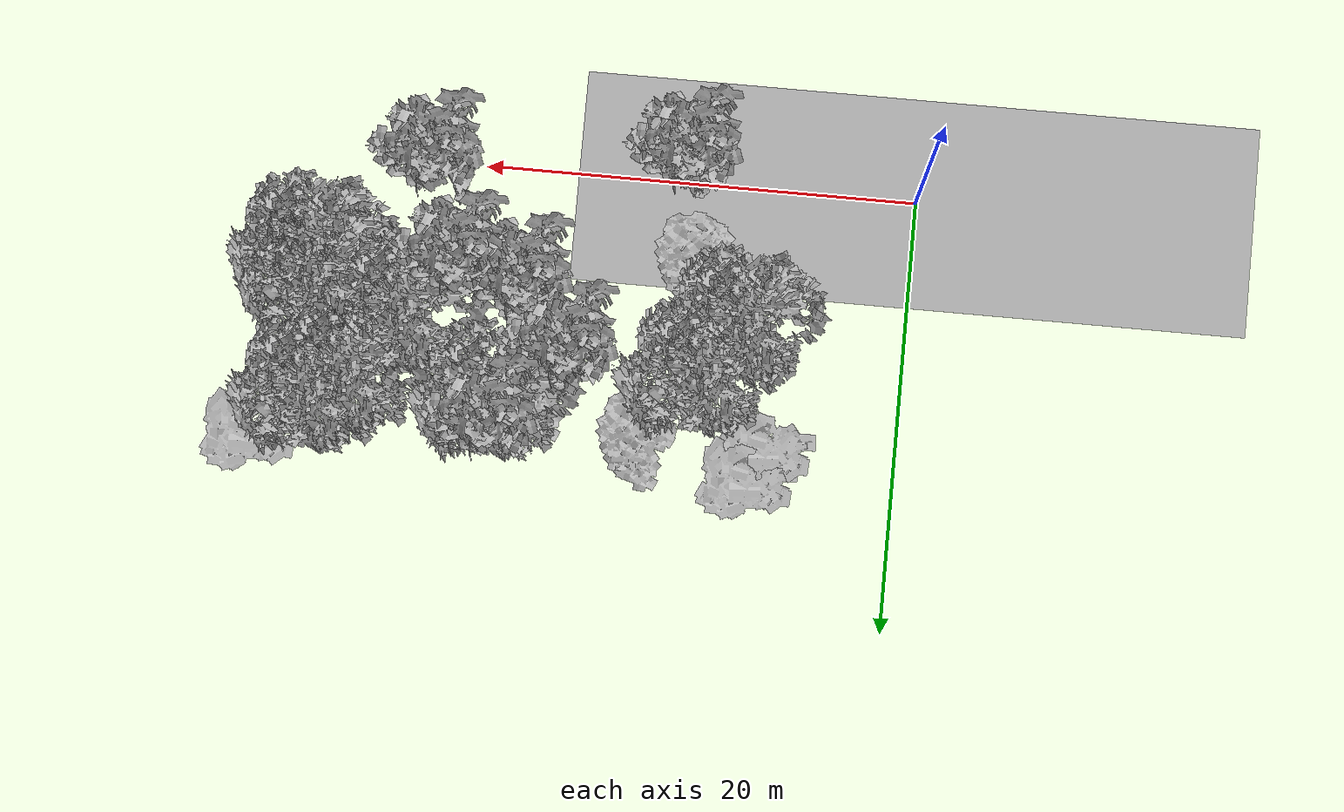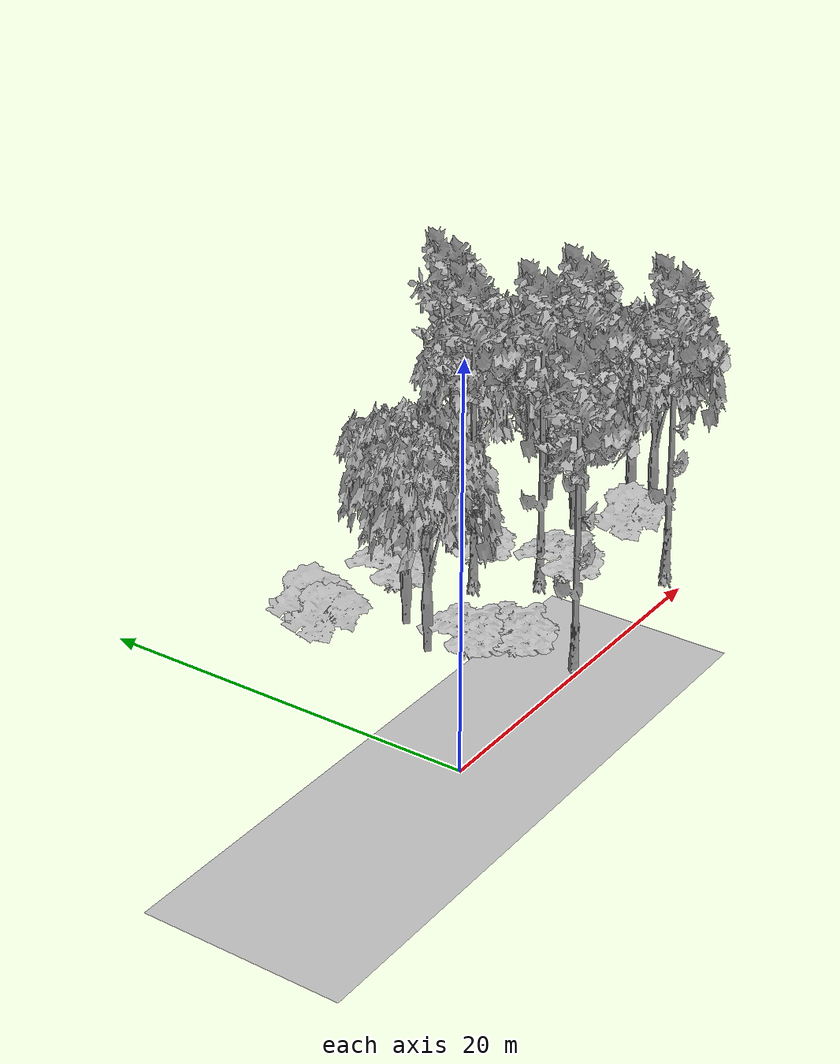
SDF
<sdf version="1.7">
 <world name="default">
  <model name="ground_plane">
   <static>1</static>
   <link name="link">
    <collision name="collision">
     <pose>-50 0 0 0 -0 0</pose>
     <geometry><plane><normal>0 0 1</normal><size>100 100</size></plane></geometry>
     <surface><contact><ode><min_depth>0.01</min_depth><max_vel>0</max_vel></ode></contact></surface>
    </collision>
    <visual name="grass">
     <cast_shadows>0</cast_shadows>
     <geometry>
      <mesh>
       <scale>0.5814285714285714 0.18142857142857144 0.1</scale>
       <uri>file://grass_plane/meshes/grass_plane.dae</uri>
      </mesh>
     </geometry>
    </visual>
   </link>
  </model>
  <model name="Tree 10">
   <static>1</static>
   <pose>9.207565093119584 9.432502181089014 0 1.57079 -0 0</pose>
   <link name="link">
    <collision name="collision">
     <geometry><mesh><scale>3.5 5 3.5</scale><uri>model://tree_2/meshes/tree_2.obj</uri></mesh></geometry>
    </collision>
    <visual name="visual">
     <geometry><mesh><scale>3.5 5 3.5</scale><uri>model://tree_2/meshes/tree_2.obj</uri></mesh></geometry>
    </visual>
   </link>
  </model>
  <model name="Tree 12">
   <static>1</static>
   <pose>21.025856287350308 1.3842964651900367 0 1.57079 -0 0</pose>
   <link name="link">
    <collision name="collision">
     <geometry><mesh><scale>3.5 5 3.5</scale><uri>model://tree_9/meshes/tree_9.obj</uri></mesh></geometry>
    </collision>
    <visual name="visual">
     <geometry><mesh><scale>3.5 5 3.5</scale><uri>model://tree_9/meshes/tree_9.obj</uri></mesh></geometry>
    </visual>
   </link>
  </model>
  <model name="Tree 16">
   <static>1</static>
   <pose>8.469443120652137 5.244132896557197 0 1.57079 -0 0</pose>
   <link name="link">
    <collision name="collision">
     <geometry><mesh><scale>4 2.5 4</scale><uri>model://tree_1/meshes/tree_1.obj</uri></mesh></geometry>
    </collision>
    <visual name="visual">
     <geometry><mesh><scale>4 2.5 4</scale><uri>model://tree_1/meshes/tree_1.obj</uri></mesh></geometry>
    </visual>
   </link>
  </model>
  <model name="Tree 41">
   <static>1</static>
   <pose>26.60695885766043 5.413874731381668 0 1.57079 -0 0</pose>
   <link name="link">
    <collision name="collision">
     <geometry><mesh><scale>3.5 5 3.5</scale><uri>model://tree_2/meshes/tree_2.obj</uri></mesh></geometry>
    </collision>
    <visual name="visual">
     <geometry><mesh><scale>3.5 5 3.5</scale><uri>model://tree_2/meshes/tree_2.obj</uri></mesh></geometry>
    </visual>
   </link>
  </model>
  <model name="Tree 58">
   <static>1</static>
   <pose>16.390098397944442 10.143635248531481 0 1.57079 -0 0</pose>
   <link name="link">
    <collision name="collision">
     <geometry><mesh><scale>4 2.5 4</scale><uri>model://tree_1/meshes/tree_1.obj</uri></mesh></geometry>
    </collision>
    <visual name="visual">
     <geometry><mesh><scale>4 2.5 4</scale><uri>model://tree_1/meshes/tree_1.obj</uri></mesh></geometry>
    </visual>
   </link>
  </model>
  <model name="Tree 69">
   <static>1</static>
   <pose>23.576476482526047 4.767473505577133 0 1.57079 -0 0</pose>
   <link name="link">
    <collision name="collision">
     <geometry><mesh><scale>3 2 3</scale><uri>model://tree_3/meshes/tree_3.obj</uri></mesh></geometry>
    </collision>
    <visual name="visual">
     <geometry><mesh><scale>3 2 3</scale><uri>model://tree_3/meshes/tree_3.obj</uri></mesh></geometry>
    </visual>
   </link>
  </model>
  <model name="Tree 82">
   <static>1</static>
   <pose>17.371757168450586 5.403757014713392 0 1.57079 -0 0</pose>
   <link name="link">
    <collision name="collision">
     <geometry><mesh><scale>4 2.5 4</scale><uri>model://tree_1/meshes/tree_1.obj</uri></mesh></geometry>
    </collision>
    <visual name="visual">
     <geometry><mesh><scale>4 2.5 4</scale><uri>model://tree_1/meshes/tree_1.obj</uri></mesh></geometry>
    </visual>
   </link>
  </model>
  <model name="Tree 83">
   <static>1</static>
   <pose>24.550537839288396 10.646241697512792 0 1.57079 -0 0</pose>
   <link name="link">
    <collision name="collision">
     <geometry><mesh><scale>3.5 5 3.5</scale><uri>model://tree_2/meshes/tree_2.obj</uri></mesh></geometry>
    </collision>
    <visual name="visual">
     <geometry><mesh><scale>3.5 5 3.5</scale><uri>model://tree_2/meshes/tree_2.obj</uri></mesh></geometry>
    </visual>
   </link>
  </model>
  <model name="Tree 86">
   <static>1</static>
   <pose>17.70004207237541 12.368740576460965 0 1.57079 -0 0</pose>
   <link name="link">
    <collision name="collision">
     <geometry><mesh><scale>3.5 5 3.5</scale><uri>model://tree_9/meshes/tree_9.obj</uri></mesh></geometry>
    </collision>
    <visual name="visual">
     <geometry><mesh><scale>3.5 5 3.5</scale><uri>model://tree_9/meshes/tree_9.obj</uri></mesh></geometry>
    </visual>
   </link>
  </model>
  <model name="Tree 89">
   <static>1</static>
   <pose>19.614802559362403 5.618602692632113 0 1.57079 -0 0</pose>
   <link name="link">
    <collision name="collision">
     <geometry><mesh><scale>3.5 5 3.5</scale><uri>model://tree_9/meshes/tree_9.obj</uri></mesh></geometry>
    </collision>
    <visual name="visual">
     <geometry><mesh><scale>3.5 5 3.5</scale><uri>model://tree_9/meshes/tree_9.obj</uri></mesh></geometry>
    </visual>
   </link>
  </model>
  <model name="Tree 91">
   <static>1</static>
   <pose>10.18950637042888 0.3011891297687068 0 1.57079 -0 0</pose>
   <link name="link">
    <collision name="collision">
     <geometry><mesh><scale>3.5 5 3.5</scale><uri>model://tree_9/meshes/tree_9.obj</uri></mesh></geometry>
    </collision>
    <visual name="visual">
     <geometry><mesh><scale>3.5 5 3.5</scale><uri>model://tree_9/meshes/tree_9.obj</uri></mesh></geometry>
    </visual>
   </link>
  </model>
  <model name="Tree 95">
   <static>1</static>
   <pose>6.7896581997774135 13.352186293015649 0 1.57079 -0 0</pose>
   <link name="link">
    <collision name="collision">
     <geometry><mesh><scale>3 2 3</scale><uri>model://tree_3/meshes/tree_3.obj</uri></mesh></geometry>
    </collision>
    <visual name="visual">
     <geometry><mesh><scale>3 2 3</scale><uri>model://tree_3/meshes/tree_3.obj</uri></mesh></geometry>
    </visual>
   </link>
  </model>
  <model name="Tree 101">
   <static>1</static>
   <pose>9.82012839334029 3.5124145268154763 0 1.57079 -0 0</pose>
   <link name="link">
    <collision name="collision">
     <geometry><mesh><scale>4 2.5 4</scale><uri>model://tree_1/meshes/tree_1.obj</uri></mesh></geometry>
    </collision>
    <visual name="visual">
     <geometry><mesh><scale>4 2.5 4</scale><uri>model://tree_1/meshes/tree_1.obj</uri></mesh></geometry>
    </visual>
   </link>
  </model>
  <model name="Tree 111">
   <static>1</static>
   <pose>25.969285133255624 11.598069760501858 0 1.57079 -0 0</pose>
   <link name="link">
    <collision name="collision">
     <geometry><mesh><scale>3.5 5 3.5</scale><uri>model://tree_2/meshes/tree_2.obj</uri></mesh></geometry>
    </collision>
    <visual name="visual">
     <geometry><mesh><scale>3.5 5 3.5</scale><uri>model://tree_2/meshes/tree_2.obj</uri></mesh></geometry>
    </visual>
   </link>
  </model>
  <model name="Tree 132">
   <static>1</static>
   <pose>7.638868399836383 7.078568134597077 0 1.57079 -0 0</pose>
   <link name="link">
    <collision name="collision">
     <geometry><mesh><scale>3.5 5 3.5</scale><uri>model://tree_2/meshes/tree_2.obj</uri></mesh></geometry>
    </collision>
    <visual name="visual">
     <geometry><mesh><scale>3.5 5 3.5</scale><uri>model://tree_2/meshes/tree_2.obj</uri></mesh></geometry>
    </visual>
   </link>
  </model>
  <model name="Tree 133">
   <static>1</static>
   <pose>26.170335167581683 6.533600602796618 0 1.57079 -0 0</pose>
   <link name="link">
    <collision name="collision">
     <geometry><mesh><scale>3.5 5 3.5</scale><uri>model://tree_2/meshes/tree_2.obj</uri></mesh></geometry>
    </collision>
    <visual name="visual">
     <geometry><mesh><scale>3.5 5 3.5</scale><uri>model://tree_2/meshes/tree_2.obj</uri></mesh></geometry>
    </visual>
   </link>
  </model>
  <model name="Tree 137">
   <static>1</static>
   <pose>11.741683205113958 11.98093184802347 0 1.57079 -0 0</pose>
   <link name="link">
    <collision name="collision">
     <geometry><mesh><scale>4 2.5 4</scale><uri>model://tree_1/meshes/tree_1.obj</uri></mesh></geometry>
    </collision>
    <visual name="visual">
     <geometry><mesh><scale>4 2.5 4</scale><uri>model://tree_1/meshes/tree_1.obj</uri></mesh></geometry>
    </visual>
   </link>
  </model>
  <model name="Tree 145">
   <static>1</static>
   <pose>16.766191774469704 6.33530100566869 0 1.57079 -0 0</pose>
   <link name="link">
    <collision name="collision">
     <geometry><mesh><scale>3.5 5 3.5</scale><uri>model://tree_9/meshes/tree_9.obj</uri></mesh></geometry>
    </collision>
    <visual name="visual">
     <geometry><mesh><scale>3.5 5 3.5</scale><uri>model://tree_9/meshes/tree_9.obj</uri></mesh></geometry>
    </visual>
   </link>
  </model>
  <model name="Tree 152">
   <static>1</static>
   <pose>6.083825554435215 11.860148863512375 0 1.57079 -0 0</pose>
   <link name="link">
    <collision name="collision">
     <geometry><mesh><scale>3 2 3</scale><uri>model://tree_3/meshes/tree_3.obj</uri></mesh></geometry>
    </collision>
    <visual name="visual">
     <geometry><mesh><scale>3 2 3</scale><uri>model://tree_3/meshes/tree_3.obj</uri></mesh></geometry>
    </visual>
   </link>
  </model>
  <model name="Tree 154">
   <static>1</static>
   <pose>29.637850721314493 13.13088525799705 0 1.57079 -0 0</pose>
   <link name="link">
    <collision name="collision">
     <geometry><mesh><scale>3 2 3</scale><uri>model://tree_3/meshes/tree_3.obj</uri></mesh></geometry>
    </collision>
    <visual name="visual">
     <geometry><mesh><scale>3 2 3</scale><uri>model://tree_3/meshes/tree_3.obj</uri></mesh></geometry>
    </visual>
   </link>
  </model>
  <model name="Tree 157">
   <static>1</static>
   <pose>14.641204497842914 9.003253625632254 0 1.57079 -0 0</pose>
   <link name="link">
    <collision name="collision">
     <geometry><mesh><scale>3.5 5 3.5</scale><uri>model://tree_9/meshes/tree_9.obj</uri></mesh></geometry>
    </collision>
    <visual name="visual">
     <geometry><mesh><scale>3.5 5 3.5</scale><uri>model://tree_9/meshes/tree_9.obj</uri></mesh></geometry>
    </visual>
   </link>
  </model>
  <model name="Tree 162">
   <static>1</static>
   <pose>18.048919637872146 11.225294159383061 0 1.57079 -0 0</pose>
   <link name="link">
    <collision name="collision">
     <geometry><mesh><scale>3.5 5 3.5</scale><uri>model://tree_2/meshes/tree_2.obj</uri></mesh></geometry>
    </collision>
    <visual name="visual">
     <geometry><mesh><scale>3.5 5 3.5</scale><uri>model://tree_2/meshes/tree_2.obj</uri></mesh></geometry>
    </visual>
   </link>
  </model>
  <model name="Tree 165">
   <static>1</static>
   <pose>22.394038878233246 7.801434240435256 0 1.57079 -0 0</pose>
   <link name="link">
    <collision name="collision">
     <geometry><mesh><scale>3.5 5 3.5</scale><uri>model://tree_2/meshes/tree_2.obj</uri></mesh></geometry>
    </collision>
    <visual name="visual">
     <geometry><mesh><scale>3.5 5 3.5</scale><uri>model://tree_2/meshes/tree_2.obj</uri></mesh></geometry>
    </visual>
   </link>
  </model>
 </world>
</sdf>
